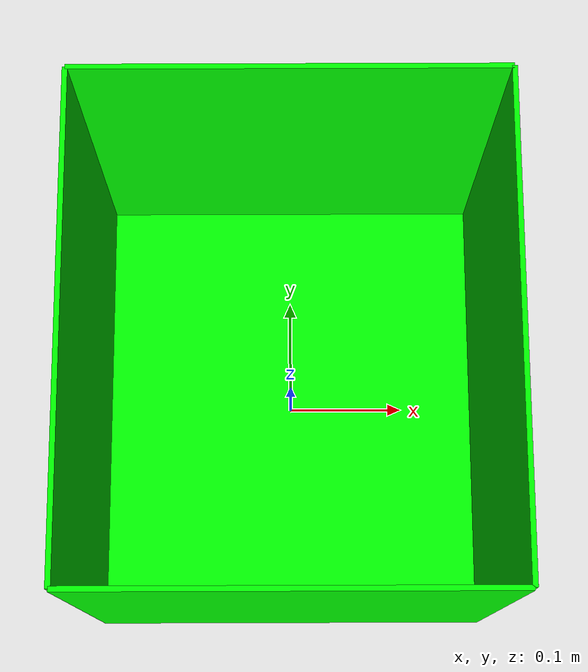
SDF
<?xml version="1.0" ?>
<sdf version="1.5">
  <model name="wrc_bin_green">
    <static>true</static>
    <link name="link">
      <inertial>
        <mass>1.0</mass>
      </inertial>
      <collision name="bottom">
        <pose>0 0 0.002 0 0 0</pose>
        <geometry>
          <box>
            <size>0.33 0.38 0.004</size>
          </box>
        </geometry>
      </collision>
      <visual name="bottom_v">
        <pose>0 0 0.002 0 0 0</pose>
        <geometry>
          <box>
            <size>0.33 0.38 0.004</size>
          </box>
        </geometry>
        <material>
          <name>green</name>
          <ambient>0.0 1.0 0.0 1.0</ambient>
          <diffuse>0.0 1.0 0.0 1.0</diffuse>
          <specular>0.1 0.1 0.1 1.0</specular>
          <shininess>5.0</shininess>
        </material>
      </visual>
      <collision name="front">
        <pose>0 0.19 0.165 0 0 0</pose>
        <geometry>
          <box>
            <size>0.33 0.004 0.33</size>
          </box>
        </geometry>
      </collision>
      <visual name="front_v">
        <pose>0 0.19 0.165 0 0 0</pose>
        <geometry>
          <box>
            <size>0.33 0.004 0.33</size>
          </box>
        </geometry>
        <material>
          <name>green</name>
          <ambient>0.0 1.0 0.0 1.0</ambient>
          <diffuse>0.0 1.0 0.0 1.0</diffuse>
          <specular>0.1 0.1 0.1 1.0</specular>
          <shininess>5.0</shininess>
        </material>
      </visual>
      <collision name="back">
        <pose>0 -0.19 0.165 0 0 0</pose>
        <geometry>
          <box>
            <size>0.33 0.004 0.33</size>
          </box>
        </geometry>
      </collision>
      <visual name="back_v">
        <pose>0 -0.19 0.165 0 0 0</pose>
        <geometry>
          <box>
            <size>0.33 0.004 0.33</size>
          </box>
        </geometry>
        <material>
          <name>green</name>
          <ambient>0.0 1.0 0.0 1.0</ambient>
          <diffuse>0.0 1.0 0.0 1.0</diffuse>
          <specular>0.1 0.1 0.1 1.0</specular>
          <shininess>5.0</shininess>
        </material>
      </visual>
      <collision name="left">
        <pose>0.165 0 0.165 0 0 0</pose>
        <geometry>
          <box>
            <size>0.004 0.38 0.33</size>
          </box>
        </geometry>
      </collision>
      <visual name="left_v">
        <pose>0.165 0 0.165 0 0 0</pose>
        <geometry>
          <box>
            <size>0.004 0.38 0.33</size>
          </box>
        </geometry>
        <material>
          <name>green</name>
          <ambient>0.0 1.0 0.0 1.0</ambient>
          <diffuse>0.0 1.0 0.0 1.0</diffuse>
          <specular>0.1 0.1 0.1 1.0</specular>
          <shininess>5.0</shininess>
        </material>
      </visual>
      <collision name="right">
        <pose>-0.165 0 0.165 0 0 0</pose>
        <geometry>
          <box>
            <size>0.004 0.38 0.33</size>
          </box>
        </geometry>
      </collision>
      <visual name="right_v">
        <pose>-0.165 0 0.165 0 0 0</pose>
        <geometry>
          <box>
            <size>0.004 0.38 0.33</size>
          </box>
        </geometry>
        <material>
          <name>green</name>
          <ambient>0.0 1.0 0.0 1.0</ambient>
          <diffuse>0.0 1.0 0.0 1.0</diffuse>
          <specular>0.1 0.1 0.1 1.0</specular>
          <shininess>5.0</shininess>
        </material>
      </visual>
    </link>
  </model>
</sdf>
